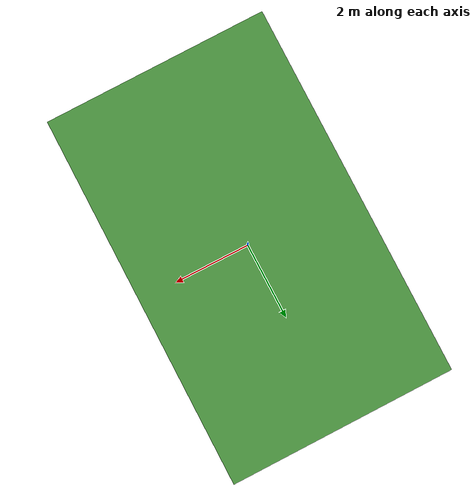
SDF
<?xml version="1.0" ?>
<sdf version="1.5">
  <model name="AIGC2_grass">
    <static>true</static>
    <link name="link">
      <pose>0 0 0.025 0 0 0</pose>
      <collision name="collision">
        <geometry>
          <box>
            <size>6.0 10.0 0.05</size>
          </box>
        </geometry>
      </collision>
      <visual name="visual">
        <cast_shadows>false</cast_shadows>
        <geometry>
          <box>
            <size>6.0 10.0 0.05</size>
          </box>
        </geometry>
        <material>
          <script>
            <uri>model://AIGC2_grass/materials/scripts</uri>
            <uri>model://AIGC2_grass/materials/textures</uri>
            <name>vrc/grass</name>
          </script>
        </material>
      </visual>
    </link>
  </model>
</sdf>
